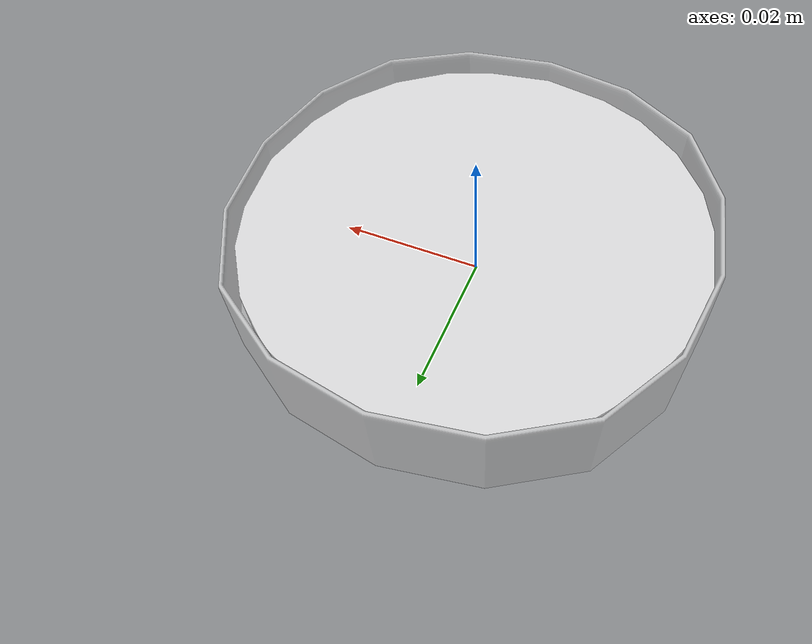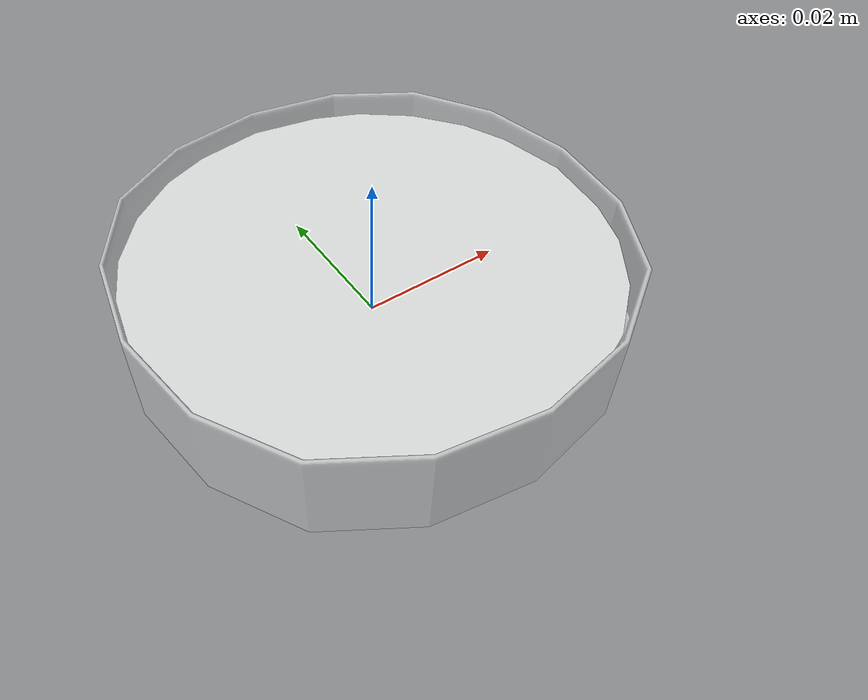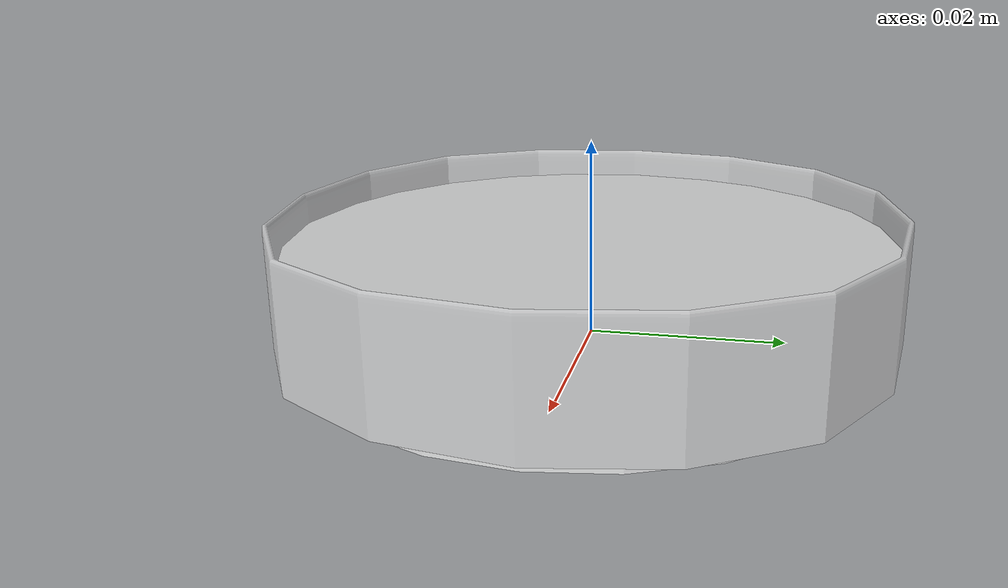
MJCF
<?xml version="1.0" ?>
<mujoco model="petri_dish">
  <asset>
    <material name="petri_dish_material" specular="0.9" shininess="0.9" rgba="0.95 0.95 0.95 0.55"/>
    <mesh file="petri_dish_lid.obj" scale="0.011461720438521849 0.011461720438521849 0.011461720438521849"/>
    <mesh file="petri_dish_lid/petri_dish_lid_collision_0.obj" scale="0.011461720438521849 0.011461720438521849 0.011461720438521849"/>
    <mesh file="petri_dish_lid/petri_dish_lid_collision_1.obj" scale="0.011461720438521849 0.011461720438521849 0.011461720438521849"/>
    <mesh file="petri_dish_lid/petri_dish_lid_collision_2.obj" scale="0.011461720438521849 0.011461720438521849 0.011461720438521849"/>
    <mesh file="petri_dish_lid/petri_dish_lid_collision_3.obj" scale="0.011461720438521849 0.011461720438521849 0.011461720438521849"/>
    <mesh file="petri_dish_lid/petri_dish_lid_collision_4.obj" scale="0.011461720438521849 0.011461720438521849 0.011461720438521849"/>
    <mesh file="petri_dish_lid/petri_dish_lid_collision_5.obj" scale="0.011461720438521849 0.011461720438521849 0.011461720438521849"/>
    <mesh file="petri_dish_lid/petri_dish_lid_collision_6.obj" scale="0.011461720438521849 0.011461720438521849 0.011461720438521849"/>
    <mesh file="petri_dish_lid/petri_dish_lid_collision_7.obj" scale="0.011461720438521849 0.011461720438521849 0.011461720438521849"/>
    <mesh file="petri_dish_lid/petri_dish_lid_collision_8.obj" scale="0.011461720438521849 0.011461720438521849 0.011461720438521849"/>
    <mesh file="petri_dish_lid/petri_dish_lid_collision_9.obj" scale="0.011461720438521849 0.011461720438521849 0.011461720438521849"/>
    <mesh file="petri_dish_lid/petri_dish_lid_collision_10.obj" scale="0.011461720438521849 0.011461720438521849 0.011461720438521849"/>
    <mesh file="petri_dish_lid/petri_dish_lid_collision_11.obj" scale="0.011461720438521849 0.011461720438521849 0.011461720438521849"/>
    <mesh file="petri_dish_lid/petri_dish_lid_collision_12.obj" scale="0.011461720438521849 0.011461720438521849 0.011461720438521849"/>
    <mesh file="petri_dish_lid/petri_dish_lid_collision_13.obj" scale="0.011461720438521849 0.011461720438521849 0.011461720438521849"/>
    <mesh file="petri_dish_lid/petri_dish_lid_collision_14.obj" scale="0.011461720438521849 0.011461720438521849 0.011461720438521849"/>
    <mesh file="petri_dish_lid/petri_dish_lid_collision_15.obj" scale="0.011461720438521849 0.011461720438521849 0.011461720438521849"/>
    <mesh file="petri_dish_lid/petri_dish_lid_collision_16.obj" scale="0.011461720438521849 0.011461720438521849 0.011461720438521849"/>
    <mesh file="petri_dish_lid/petri_dish_lid_collision_17.obj" scale="0.011461720438521849 0.011461720438521849 0.011461720438521849"/>
    <mesh file="petri_dish_lid/petri_dish_lid_collision_18.obj" scale="0.011461720438521849 0.011461720438521849 0.011461720438521849"/>
    <mesh file="petri_dish_lid/petri_dish_lid_collision_19.obj" scale="0.011461720438521849 0.011461720438521849 0.011461720438521849"/>
    <mesh file="petri_dish_lid/petri_dish_lid_collision_20.obj" scale="0.011461720438521849 0.011461720438521849 0.011461720438521849"/>
    <mesh file="petri_dish_lid/petri_dish_lid_collision_21.obj" scale="0.011461720438521849 0.011461720438521849 0.011461720438521849"/>
    <mesh file="petri_dish_lid/petri_dish_lid_collision_22.obj" scale="0.011461720438521849 0.011461720438521849 0.011461720438521849"/>
    <mesh file="petri_dish_lid/petri_dish_lid_collision_23.obj" scale="0.011461720438521849 0.011461720438521849 0.011461720438521849"/>
    <mesh file="petri_dish_lid/petri_dish_lid_collision_24.obj" scale="0.011461720438521849 0.011461720438521849 0.011461720438521849"/>
    <mesh file="petri_dish_lid/petri_dish_lid_collision_25.obj" scale="0.011461720438521849 0.011461720438521849 0.011461720438521849"/>
    <mesh file="petri_dish_lid/petri_dish_lid_collision_26.obj" scale="0.011461720438521849 0.011461720438521849 0.011461720438521849"/>
      <material name="CaSO4" rgba="1 1 1 0.7"/>
    <material name="CuCl2" rgba="0.141 1.0 0.174 0.4"/>
    <material name="CuSO4" rgba="0 0.45 1 0.4"/>
    <material name="FeCl3" rgba="0.6475 0.5686 0.023 0.4"/>
    <material name="KMnO4" rgba="0.5 0 0.5 0.4"/>
    <material name="I2" rgba="0.3 0.13 0.0 0.4"/>
    <material name="K2CrO4" rgba="0.57 0.12 0.013 0.4"/>
    <material name="NaCl" rgba="1 1 1 0.3"/>
</asset>
  <worldbody>
    <body name="petri_dish">
      <inertial pos="0.000000 0.000000 0.004339" mass="0.02" diaginertia="0.0008 0.0008 0.0005"/>
      <geom material="petri_dish_material" mesh="petri_dish_lid" class="visual"/>
      <geom mesh="petri_dish_lid_collision_0"  class="collision"/>
      <geom mesh="petri_dish_lid_collision_1"  class="collision"/>
      <geom mesh="petri_dish_lid_collision_2"  class="collision"/>
      <geom mesh="petri_dish_lid_collision_3"  class="collision"/>
      <geom mesh="petri_dish_lid_collision_4"  class="collision"/>
      <geom mesh="petri_dish_lid_collision_5"  class="collision"/>
      <geom mesh="petri_dish_lid_collision_6"  class="collision"/>
      <geom mesh="petri_dish_lid_collision_7"  class="collision"/>
      <geom mesh="petri_dish_lid_collision_8"  class="collision"/>
      <geom mesh="petri_dish_lid_collision_9"  class="collision"/>
      <geom mesh="petri_dish_lid_collision_10"  class="collision"/>
      <geom mesh="petri_dish_lid_collision_11"  class="collision"/>
      <geom mesh="petri_dish_lid_collision_12"  class="collision"/>
      <geom mesh="petri_dish_lid_collision_13"  class="collision"/>
      <geom mesh="petri_dish_lid_collision_14"  class="collision"/>
      <geom mesh="petri_dish_lid_collision_15"  class="collision"/>
      <geom mesh="petri_dish_lid_collision_16"  class="collision"/>
      <geom mesh="petri_dish_lid_collision_17"  class="collision"/>
      <geom mesh="petri_dish_lid_collision_18"  class="collision"/>
      <geom mesh="petri_dish_lid_collision_19"  class="collision"/>
      <geom mesh="petri_dish_lid_collision_20"  class="collision"/>
      <geom mesh="petri_dish_lid_collision_21"  class="collision"/>
      <geom mesh="petri_dish_lid_collision_22"  class="collision"/>
      <geom mesh="petri_dish_lid_collision_23"  class="collision"/>
      <geom mesh="petri_dish_lid_collision_24"  class="collision"/>
      <geom mesh="petri_dish_lid_collision_25"  class="collision"/>
      <geom mesh="petri_dish_lid_collision_26"  class="collision"/>
      <site class="grasppoint" pos="0.00000 0.00000 0.00521"/>
      <site class="grasppoint" pos="0.00000 0.00000 0.00694"/>
      <site class="grasppoint" pos="0.00000 0.00000 0.00825"/>
          <geom name="solution" type="cylinder" size="0.03084 0.0050297" pos="0.00000 0.00000 0.005162" material="CaSO4" class="visual"/>
      <site name="top_site" pos="0.00000 0.00000 0.34325" size="0.01" rgba="1 0 0 0"/>
      <site name="bottom_site" pos="0.00000 0.00000 0.00000" size="0.01" rgba="0 1 0 0"/>
</body>
  </worldbody>
  <compiler boundmass="0.015" boundinertia="1e-05" angle="radian"/>
  <default>
    <default class="visual">
      <geom group="2" type="mesh" contype="0" conaffinity="0" density="50"/>
    </default>
    <default class="collision">
      <geom group="3" type="mesh" density="50" friction="1.5 0.1 0.1" solimp="0.9 0.95 0.001" solref="0.02 1"/>
    </default>
    <default class="grasppoint">
      <site type="sphere" size="0.005" group="4" rgba="0 0 1 1"/>
    </default>
  </default>
</mujoco>
